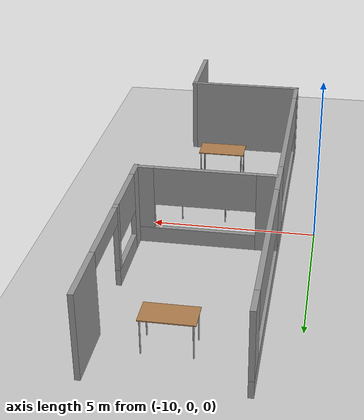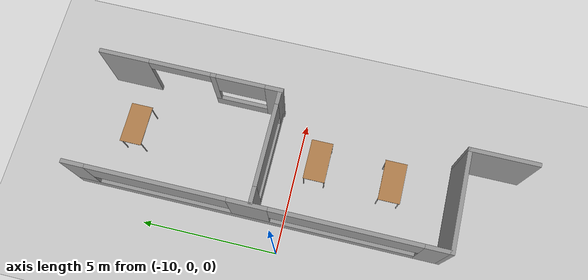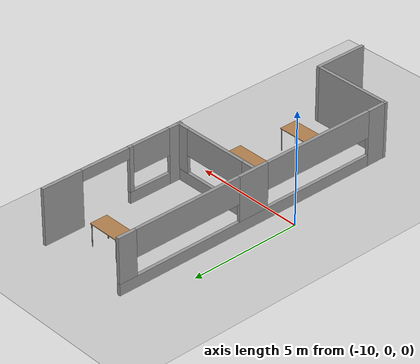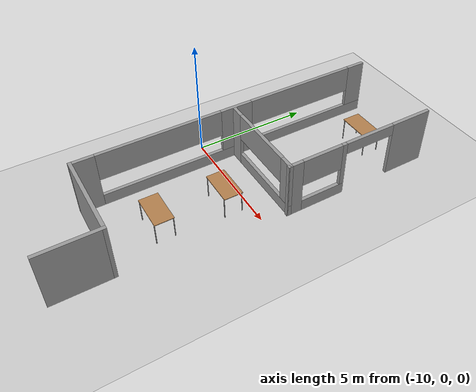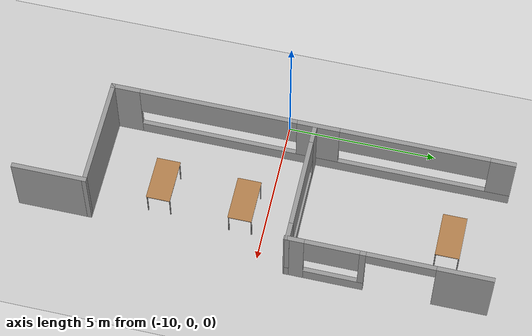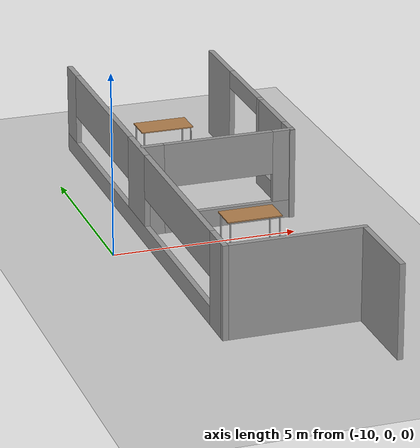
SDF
<sdf version="1.6">
 <world name="default">
  <model name="ground_plane">
   <static>1</static>
   <link name="link">
    <collision name="collision">
     <geometry><plane><normal>0 0 1</normal><size>100 100</size></plane></geometry>
     <surface>
      <contact><collide_bitmask>65535</collide_bitmask></contact>
      <friction><ode><mu>100</mu><mu2>50</mu2></ode></friction>
     </surface>
    </collision>
    <visual name="visual">
     <cast_shadows>0</cast_shadows>
     <geometry><plane><normal>0 0 1</normal><size>100 100</size></plane></geometry>
     <material>
      <script><uri>file://media/materials/scripts/gazebo.material</uri><name>Gazebo/Grey</name></script>
     </material>
    </visual>
   </link>
  </model>
  <model name="my_office">
   <link name="Wall_46">
    <pose>-5.01478 4.56257 0 0 -0 1.5708</pose>
    <visual name="Wall_46_Visual_0">
     <pose>-3.04368 0 1.25 0 -0 0</pose>
     <geometry><box><size>0.662647 0.15 2.5</size></box></geometry>
     <material>
      <script><uri>file://media/materials/scripts/gazebo.material</uri><name>Gazebo/Grey</name></script>
      <ambient>1 1 1 1</ambient>
      <shader type="pixel"/>
      <diffuse>0.7 0.7 0.7 1</diffuse>
      <specular>0.01 0.01 0.01 1</specular>
      <emissive>0 0 0 1</emissive>
     </material>
     <meta><layer>0</layer></meta>
    </visual>
    <visual name="Wall_46_Visual_1">
     <pose>2.45072 0 1.25 0 -0 0</pose>
     <geometry><box><size>1.84856 0.15 2.5</size></box></geometry>
     <material>
      <script><uri>file://media/materials/scripts/gazebo.material</uri><name>Gazebo/Grey</name></script>
      <ambient>1 1 1 1</ambient>
      <shader type="pixel"/>
      <diffuse>0.7 0.7 0.7 1</diffuse>
      <specular>0.01 0.01 0.01 1</specular>
      <emissive>0 0 0 1</emissive>
     </material>
     <meta><layer>0</layer></meta>
    </visual>
    <visual name="Wall_46_Visual_2">
     <pose>-1.71975 0 0.25 0 -0 0</pose>
     <geometry><box><size>1.98521 0.15 0.5</size></box></geometry>
     <material>
      <script><uri>file://media/materials/scripts/gazebo.material</uri><name>Gazebo/Grey</name></script>
      <ambient>1 1 1 1</ambient>
      <shader type="pixel"/>
      <diffuse>0.7 0.7 0.7 1</diffuse>
      <specular>0.01 0.01 0.01 1</specular>
      <emissive>0 0 0 1</emissive>
     </material>
     <meta><layer>0</layer></meta>
    </visual>
    <visual name="Wall_46_Visual_3">
     <pose>-0.827243 0 1.5 0 -0 0</pose>
     <geometry><box><size>0.200209 0.15 2</size></box></geometry>
     <material>
      <script><uri>file://media/materials/scripts/gazebo.material</uri><name>Gazebo/Grey</name></script>
      <ambient>1 1 1 1</ambient>
      <shader type="pixel"/>
      <diffuse>0.7 0.7 0.7 1</diffuse>
      <specular>0.01 0.01 0.01 1</specular>
      <emissive>0 0 0 1</emissive>
     </material>
     <meta><layer>0</layer></meta>
    </visual>
    <visual name="Wall_46_Visual_4">
     <pose>-1.81985 0 1.9 0 -0 0</pose>
     <geometry><box><size>1.785 0.15 1.2</size></box></geometry>
     <material>
      <script><uri>file://media/materials/scripts/gazebo.material</uri><name>Gazebo/Grey</name></script>
      <ambient>1 1 1 1</ambient>
      <shader type="pixel"/>
      <diffuse>0.7 0.7 0.7 1</diffuse>
      <specular>0.01 0.01 0.01 1</specular>
      <emissive>0 0 0 1</emissive>
     </material>
     <meta><layer>0</layer></meta>
    </visual>
    <visual name="Wall_46_Visual_5">
     <pose>0.399651 0 2.25 0 -0 0</pose>
     <geometry><box><size>2.25358 0.15 0.5</size></box></geometry>
     <material>
      <script><uri>file://media/materials/scripts/gazebo.material</uri><name>Gazebo/Grey</name></script>
      <ambient>1 1 1 1</ambient>
      <shader type="pixel"/>
      <diffuse>0.7 0.7 0.7 1</diffuse>
      <specular>0.01 0.01 0.01 1</specular>
      <emissive>0 0 0 1</emissive>
     </material>
     <meta><layer>0</layer></meta>
    </visual>
    <collision name="Wall_46_Collision_2">
     <pose>-1.71975 0 0.25 0 -0 0</pose>
     <geometry><box><size>1.98521 0.15 0.5</size></box></geometry>
     <surface>
      <friction>
       <ode><mu>1</mu><mu2>1</mu2><fdir1>0 0 0</fdir1><slip1>0</slip1><slip2>0</slip2></ode>
       <torsional>
        <coefficient>1</coefficient>
        <patch_radius>0</patch_radius>
        <surface_radius>0</surface_radius>
        <use_patch_radius>1</use_patch_radius>
        <ode><slip>0</slip></ode>
       </torsional>
      </friction>
      <bounce><restitution_coefficient>0</restitution_coefficient><threshold>1e+06</threshold></bounce>
      <contact>
       <collide_without_contact>0</collide_without_contact>
       <collide_without_contact_bitmask>1</collide_without_contact_bitmask>
       <collide_bitmask>1</collide_bitmask>
       <ode>
        <soft_cfm>0</soft_cfm>
        <soft_erp>0.2</soft_erp>
        <kp>1e+13</kp>
        <kd>1</kd>
        <max_vel>0.01</max_vel>
        <min_depth>0</min_depth>
       </ode>
       <bullet>
        <split_impulse>1</split_impulse>
        <split_impulse_penetration_threshold>-0.01</split_impulse_penetration_threshold>
        <soft_cfm>0</soft_cfm>
        <soft_erp>0.2</soft_erp>
        <kp>1e+13</kp>
        <kd>1</kd>
       </bullet>
      </contact>
     </surface>
    </collision>
    <collision name="Wall_46_Collision_3">
     <pose>-0.827243 0 1.5 0 -0 0</pose>
     <geometry><box><size>0.200209 0.15 2</size></box></geometry>
     <surface>
      <friction>
       <ode><mu>1</mu><mu2>1</mu2><fdir1>0 0 0</fdir1><slip1>0</slip1><slip2>0</slip2></ode>
       <torsional>
        <coefficient>1</coefficient>
        <patch_radius>0</patch_radius>
        <surface_radius>0</surface_radius>
        <use_patch_radius>1</use_patch_radius>
        <ode><slip>0</slip></ode>
       </torsional>
      </friction>
      <bounce><restitution_coefficient>0</restitution_coefficient><threshold>1e+06</threshold></bounce>
      <contact>
       <collide_without_contact>0</collide_without_contact>
       <collide_without_contact_bitmask>1</collide_without_contact_bitmask>
       <collide_bitmask>1</collide_bitmask>
       <ode>
        <soft_cfm>0</soft_cfm>
        <soft_erp>0.2</soft_erp>
        <kp>1e+13</kp>
        <kd>1</kd>
        <max_vel>0.01</max_vel>
        <min_depth>0</min_depth>
       </ode>
       <bullet>
        <split_impulse>1</split_impulse>
        <split_impulse_penetration_threshold>-0.01</split_impulse_penetration_threshold>
        <soft_cfm>0</soft_cfm>
        <soft_erp>0.2</soft_erp>
        <kp>1e+13</kp>
        <kd>1</kd>
       </bullet>
      </contact>
     </surface>
    </collision>
    <collision name="Wall_46_Collision_4">
     <pose>-1.81985 0 1.9 0 -0 0</pose>
     <geometry><box><size>1.785 0.15 1.2</size></box></geometry>
     <surface>
      <friction>
       <ode><mu>1</mu><mu2>1</mu2><fdir1>0 0 0</fdir1><slip1>0</slip1><slip2>0</slip2></ode>
       <torsional>
        <coefficient>1</coefficient>
        <patch_radius>0</patch_radius>
        <surface_radius>0</surface_radius>
        <use_patch_radius>1</use_patch_radius>
        <ode><slip>0</slip></ode>
       </torsional>
      </friction>
      <bounce><restitution_coefficient>0</restitution_coefficient><threshold>1e+06</threshold></bounce>
      <contact>
       <collide_without_contact>0</collide_without_contact>
       <collide_without_contact_bitmask>1</collide_without_contact_bitmask>
       <collide_bitmask>1</collide_bitmask>
       <ode>
        <soft_cfm>0</soft_cfm>
        <soft_erp>0.2</soft_erp>
        <kp>1e+13</kp>
        <kd>1</kd>
        <max_vel>0.01</max_vel>
        <min_depth>0</min_depth>
       </ode>
       <bullet>
        <split_impulse>1</split_impulse>
        <split_impulse_penetration_threshold>-0.01</split_impulse_penetration_threshold>
        <soft_cfm>0</soft_cfm>
        <soft_erp>0.2</soft_erp>
        <kp>1e+13</kp>
        <kd>1</kd>
       </bullet>
      </contact>
     </surface>
    </collision>
    <collision name="Wall_46_Collision_5">
     <pose>0.399651 0 2.25 0 -0 0</pose>
     <geometry><box><size>2.25358 0.15 0.5</size></box></geometry>
     <surface>
      <friction>
       <ode><mu>1</mu><mu2>1</mu2><fdir1>0 0 0</fdir1><slip1>0</slip1><slip2>0</slip2></ode>
       <torsional>
        <coefficient>1</coefficient>
        <patch_radius>0</patch_radius>
        <surface_radius>0</surface_radius>
        <use_patch_radius>1</use_patch_radius>
        <ode><slip>0</slip></ode>
       </torsional>
      </friction>
      <bounce><restitution_coefficient>0</restitution_coefficient><threshold>1e+06</threshold></bounce>
      <contact>
       <collide_without_contact>0</collide_without_contact>
       <collide_without_contact_bitmask>1</collide_without_contact_bitmask>
       <collide_bitmask>1</collide_bitmask>
       <ode>
        <soft_cfm>0</soft_cfm>
        <soft_erp>0.2</soft_erp>
        <kp>1e+13</kp>
        <kd>1</kd>
        <max_vel>0.01</max_vel>
        <min_depth>0</min_depth>
       </ode>
       <bullet>
        <split_impulse>1</split_impulse>
        <split_impulse_penetration_threshold>-0.01</split_impulse_penetration_threshold>
        <soft_cfm>0</soft_cfm>
        <soft_erp>0.2</soft_erp>
        <kp>1e+13</kp>
        <kd>1</kd>
       </bullet>
      </contact>
     </surface>
    </collision>
    <collision name="Wall_46_Collision_0">
     <pose>-3.04368 0 1.25 0 -0 0</pose>
     <geometry><box><size>0.662647 0.15 2.5</size></box></geometry>
     <surface>
      <friction>
       <ode><mu>1</mu><mu2>1</mu2><fdir1>0 0 0</fdir1><slip1>0</slip1><slip2>0</slip2></ode>
       <torsional>
        <coefficient>1</coefficient>
        <patch_radius>0</patch_radius>
        <surface_radius>0</surface_radius>
        <use_patch_radius>1</use_patch_radius>
        <ode><slip>0</slip></ode>
       </torsional>
      </friction>
      <bounce><restitution_coefficient>0</restitution_coefficient><threshold>1e+06</threshold></bounce>
      <contact>
       <collide_without_contact>0</collide_without_contact>
       <collide_without_contact_bitmask>1</collide_without_contact_bitmask>
       <collide_bitmask>1</collide_bitmask>
       <ode>
        <soft_cfm>0</soft_cfm>
        <soft_erp>0.2</soft_erp>
        <kp>1e+13</kp>
        <kd>1</kd>
        <max_vel>0.01</max_vel>
        <min_depth>0</min_depth>
       </ode>
       <bullet>
        <split_impulse>1</split_impulse>
        <split_impulse_penetration_threshold>-0.01</split_impulse_penetration_threshold>
        <soft_cfm>0</soft_cfm>
        <soft_erp>0.2</soft_erp>
        <kp>1e+13</kp>
        <kd>1</kd>
       </bullet>
      </contact>
     </surface>
    </collision>
    <collision name="Wall_46_Collision_1">
     <pose>2.45072 0 1.25 0 -0 0</pose>
     <geometry><box><size>1.84856 0.15 2.5</size></box></geometry>
     <surface>
      <friction>
       <ode><mu>1</mu><mu2>1</mu2><fdir1>0 0 0</fdir1><slip1>0</slip1><slip2>0</slip2></ode>
       <torsional>
        <coefficient>1</coefficient>
        <patch_radius>0</patch_radius>
        <surface_radius>0</surface_radius>
        <use_patch_radius>1</use_patch_radius>
        <ode><slip>0</slip></ode>
       </torsional>
      </friction>
      <bounce><restitution_coefficient>0</restitution_coefficient><threshold>1e+06</threshold></bounce>
      <contact>
       <collide_without_contact>0</collide_without_contact>
       <collide_without_contact_bitmask>1</collide_without_contact_bitmask>
       <collide_bitmask>1</collide_bitmask>
       <ode>
        <soft_cfm>0</soft_cfm>
        <soft_erp>0.2</soft_erp>
        <kp>1e+13</kp>
        <kd>1</kd>
        <max_vel>0.01</max_vel>
        <min_depth>0</min_depth>
       </ode>
       <bullet>
        <split_impulse>1</split_impulse>
        <split_impulse_penetration_threshold>-0.01</split_impulse_penetration_threshold>
        <soft_cfm>0</soft_cfm>
        <soft_erp>0.2</soft_erp>
        <kp>1e+13</kp>
        <kd>1</kd>
       </bullet>
      </contact>
     </surface>
    </collision>
   </link>
   <link name="Wall_48">
    <pose>-7.41345 -5.50336 0 0 -0 3.14159</pose>
    <visual name="Wall_48_Visual">
     <pose>0 0 1.25 0 -0 0</pose>
     <geometry><box><size>3.75 0.15 2.5</size></box></geometry>
     <material>
      <script><uri>file://media/materials/scripts/gazebo.material</uri><name>Gazebo/Grey</name></script>
      <ambient>1 1 1 1</ambient>
      <shader type="pixel"/>
      <diffuse>0.7 0.7 0.7 1</diffuse>
      <specular>0.01 0.01 0.01 1</specular>
      <emissive>0 0 0 1</emissive>
     </material>
     <meta><layer>0</layer></meta>
    </visual>
    <collision name="Wall_48_Collision">
     <pose>0 0 1.25 0 -0 0</pose>
     <geometry><box><size>3.75 0.15 2.5</size></box></geometry>
     <surface>
      <friction>
       <ode><mu>1</mu><mu2>1</mu2><fdir1>0 0 0</fdir1><slip1>0</slip1><slip2>0</slip2></ode>
       <torsional>
        <coefficient>1</coefficient>
        <patch_radius>0</patch_radius>
        <surface_radius>0</surface_radius>
        <use_patch_radius>1</use_patch_radius>
        <ode><slip>0</slip></ode>
       </torsional>
      </friction>
      <bounce><restitution_coefficient>0</restitution_coefficient><threshold>1e+06</threshold></bounce>
      <contact>
       <collide_without_contact>0</collide_without_contact>
       <collide_without_contact_bitmask>1</collide_without_contact_bitmask>
       <collide_bitmask>1</collide_bitmask>
       <ode>
        <soft_cfm>0</soft_cfm>
        <soft_erp>0.2</soft_erp>
        <kp>1e+13</kp>
        <kd>1</kd>
        <max_vel>0.01</max_vel>
        <min_depth>0</min_depth>
       </ode>
       <bullet>
        <split_impulse>1</split_impulse>
        <split_impulse_penetration_threshold>-0.01</split_impulse_penetration_threshold>
        <soft_cfm>0</soft_cfm>
        <soft_erp>0.2</soft_erp>
        <kp>1e+13</kp>
        <kd>1</kd>
       </bullet>
      </contact>
     </surface>
    </collision>
   </link>
   <link name="Wall_5">
    <pose>-5.61345 -6.67836 0 0 -0 1.5708</pose>
    <visual name="Wall_5_Visual">
     <pose>0 0 1.25 0 -0 0</pose>
     <geometry><box><size>2.5 0.15 2.5</size></box></geometry>
     <material>
      <script><uri>file://media/materials/scripts/gazebo.material</uri><name>Gazebo/Grey</name></script>
      <ambient>1 1 1 1</ambient>
      <shader type="pixel"/>
      <diffuse>0.7 0.7 0.7 1</diffuse>
      <specular>0.01 0.01 0.01 1</specular>
      <emissive>0 0 0 1</emissive>
     </material>
     <meta><layer>0</layer></meta>
    </visual>
    <collision name="Wall_5_Collision">
     <pose>0 0 1.25 0 -0 0</pose>
     <geometry><box><size>2.5 0.15 2.5</size></box></geometry>
     <surface>
      <friction>
       <ode><mu>1</mu><mu2>1</mu2><fdir1>0 0 0</fdir1><slip1>0</slip1><slip2>0</slip2></ode>
       <torsional>
        <coefficient>1</coefficient>
        <patch_radius>0</patch_radius>
        <surface_radius>0</surface_radius>
        <use_patch_radius>1</use_patch_radius>
        <ode><slip>0</slip></ode>
       </torsional>
      </friction>
      <bounce><restitution_coefficient>0</restitution_coefficient><threshold>1e+06</threshold></bounce>
      <contact>
       <collide_without_contact>0</collide_without_contact>
       <collide_without_contact_bitmask>1</collide_without_contact_bitmask>
       <collide_bitmask>1</collide_bitmask>
       <ode>
        <soft_cfm>0</soft_cfm>
        <soft_erp>0.2</soft_erp>
        <kp>1e+13</kp>
        <kd>1</kd>
        <max_vel>0.01</max_vel>
        <min_depth>0</min_depth>
       </ode>
       <bullet>
        <split_impulse>1</split_impulse>
        <split_impulse_penetration_threshold>-0.01</split_impulse_penetration_threshold>
        <soft_cfm>0</soft_cfm>
        <soft_erp>0.2</soft_erp>
        <kp>1e+13</kp>
        <kd>1</kd>
       </bullet>
      </contact>
     </surface>
    </collision>
   </link>
   <link name="Wall_51">
    <pose>-9.21345 1.17164 0 0 -0 1.5708</pose>
    <visual name="Wall_51_Visual_0">
     <pose>-6.25352 0 1.25 0 -0 0</pose>
     <geometry><box><size>0.992958 0.15 2.5</size></box></geometry>
     <material>
      <script><uri>file://media/materials/scripts/gazebo.material</uri><name>Gazebo/Grey</name></script>
      <ambient>1 1 1 1</ambient>
      <shader type="pixel"/>
      <diffuse>0.7 0.7 0.7 1</diffuse>
      <specular>0.01 0.01 0.01 1</specular>
      <emissive>0 0 0 1</emissive>
     </material>
     <meta><layer>0</layer></meta>
    </visual>
    <visual name="Wall_51_Visual_1">
     <pose>0.496479 0 0.25 0 -0 0</pose>
     <geometry><box><size>12.507 0.15 0.5</size></box></geometry>
     <material>
      <script><uri>file://media/materials/scripts/gazebo.material</uri><name>Gazebo/Grey</name></script>
      <ambient>1 1 1 1</ambient>
      <shader type="pixel"/>
      <diffuse>0.7 0.7 0.7 1</diffuse>
      <specular>0.01 0.01 0.01 1</specular>
      <emissive>0 0 0 1</emissive>
     </material>
     <meta><layer>0</layer></meta>
    </visual>
    <visual name="Wall_51_Visual_3">
     <pose>6.332 0 1.5 0 -0 0</pose>
     <geometry><box><size>0.836008 0.15 2</size></box></geometry>
     <material>
      <script><uri>file://media/materials/scripts/gazebo.material</uri><name>Gazebo/Grey</name></script>
      <ambient>1 1 1 1</ambient>
      <shader type="pixel"/>
      <diffuse>0.7 0.7 0.7 1</diffuse>
      <specular>0.01 0.01 0.01 1</specular>
      <emissive>0 0 0 1</emissive>
     </material>
     <meta><layer>0</layer></meta>
    </visual>
    <visual name="Wall_51_Visual_2">
     <pose>0.239384 0 1.5 0 -0 0</pose>
     <geometry><box><size>1.4222 0.15 2</size></box></geometry>
     <material>
      <script><uri>file://media/materials/scripts/gazebo.material</uri><name>Gazebo/Grey</name></script>
      <ambient>1 1 1 1</ambient>
      <shader type="pixel"/>
      <diffuse>0.7 0.7 0.7 1</diffuse>
      <specular>0.01 0.01 0.01 1</specular>
      <emissive>0 0 0 1</emissive>
     </material>
     <meta><layer>0</layer></meta>
    </visual>
    <visual name="Wall_51_Visual_4">
     <pose>-3.11438 0 1.9 0 -0 0</pose>
     <geometry><box><size>5.28533 0.15 1.2</size></box></geometry>
     <material>
      <script><uri>file://media/materials/scripts/gazebo.material</uri><name>Gazebo/Grey</name></script>
      <ambient>1 1 1 1</ambient>
      <shader type="pixel"/>
      <diffuse>0.7 0.7 0.7 1</diffuse>
      <specular>0.01 0.01 0.01 1</specular>
      <emissive>0 0 0 1</emissive>
     </material>
     <meta><layer>0</layer></meta>
    </visual>
    <visual name="Wall_51_Visual_5">
     <pose>3.43224 0 1.9 0 -0 0</pose>
     <geometry><box><size>4.96351 0.15 1.2</size></box></geometry>
     <material>
      <script><uri>file://media/materials/scripts/gazebo.material</uri><name>Gazebo/Grey</name></script>
      <ambient>1 1 1 1</ambient>
      <shader type="pixel"/>
      <diffuse>0.7 0.7 0.7 1</diffuse>
      <specular>0.01 0.01 0.01 1</specular>
      <emissive>0 0 0 1</emissive>
     </material>
     <meta><layer>0</layer></meta>
    </visual>
    <collision name="Wall_51_Collision_0">
     <pose>-6.25352 0 1.25 0 -0 0</pose>
     <geometry><box><size>0.992958 0.15 2.5</size></box></geometry>
     <surface>
      <friction>
       <ode><mu>1</mu><mu2>1</mu2><fdir1>0 0 0</fdir1><slip1>0</slip1><slip2>0</slip2></ode>
       <torsional>
        <coefficient>1</coefficient>
        <patch_radius>0</patch_radius>
        <surface_radius>0</surface_radius>
        <use_patch_radius>1</use_patch_radius>
        <ode><slip>0</slip></ode>
       </torsional>
      </friction>
      <bounce><restitution_coefficient>0</restitution_coefficient><threshold>1e+06</threshold></bounce>
      <contact>
       <collide_without_contact>0</collide_without_contact>
       <collide_without_contact_bitmask>1</collide_without_contact_bitmask>
       <collide_bitmask>1</collide_bitmask>
       <ode>
        <soft_cfm>0</soft_cfm>
        <soft_erp>0.2</soft_erp>
        <kp>1e+13</kp>
        <kd>1</kd>
        <max_vel>0.01</max_vel>
        <min_depth>0</min_depth>
       </ode>
       <bullet>
        <split_impulse>1</split_impulse>
        <split_impulse_penetration_threshold>-0.01</split_impulse_penetration_threshold>
        <soft_cfm>0</soft_cfm>
        <soft_erp>0.2</soft_erp>
        <kp>1e+13</kp>
        <kd>1</kd>
       </bullet>
      </contact>
     </surface>
    </collision>
    <collision name="Wall_51_Collision_1">
     <pose>0.496479 0 0.25 0 -0 0</pose>
     <geometry><box><size>12.507 0.15 0.5</size></box></geometry>
     <surface>
      <friction>
       <ode><mu>1</mu><mu2>1</mu2><fdir1>0 0 0</fdir1><slip1>0</slip1><slip2>0</slip2></ode>
       <torsional>
        <coefficient>1</coefficient>
        <patch_radius>0</patch_radius>
        <surface_radius>0</surface_radius>
        <use_patch_radius>1</use_patch_radius>
        <ode><slip>0</slip></ode>
       </torsional>
      </friction>
      <bounce><restitution_coefficient>0</restitution_coefficient><threshold>1e+06</threshold></bounce>
      <contact>
       <collide_without_contact>0</collide_without_contact>
       <collide_without_contact_bitmask>1</collide_without_contact_bitmask>
       <collide_bitmask>1</collide_bitmask>
       <ode>
        <soft_cfm>0</soft_cfm>
        <soft_erp>0.2</soft_erp>
        <kp>1e+13</kp>
        <kd>1</kd>
        <max_vel>0.01</max_vel>
        <min_depth>0</min_depth>
       </ode>
       <bullet>
        <split_impulse>1</split_impulse>
        <split_impulse_penetration_threshold>-0.01</split_impulse_penetration_threshold>
        <soft_cfm>0</soft_cfm>
        <soft_erp>0.2</soft_erp>
        <kp>1e+13</kp>
        <kd>1</kd>
       </bullet>
      </contact>
     </surface>
    </collision>
    <collision name="Wall_51_Collision_2">
     <pose>0.239384 0 1.5 0 -0 0</pose>
     <geometry><box><size>1.4222 0.15 2</size></box></geometry>
     <surface>
      <friction>
       <ode><mu>1</mu><mu2>1</mu2><fdir1>0 0 0</fdir1><slip1>0</slip1><slip2>0</slip2></ode>
       <torsional>
        <coefficient>1</coefficient>
        <patch_radius>0</patch_radius>
        <surface_radius>0</surface_radius>
        <use_patch_radius>1</use_patch_radius>
        <ode><slip>0</slip></ode>
       </torsional>
      </friction>
      <bounce><restitution_coefficient>0</restitution_coefficient><threshold>1e+06</threshold></bounce>
      <contact>
       <collide_without_contact>0</collide_without_contact>
       <collide_without_contact_bitmask>1</collide_without_contact_bitmask>
       <collide_bitmask>1</collide_bitmask>
       <ode>
        <soft_cfm>0</soft_cfm>
        <soft_erp>0.2</soft_erp>
        <kp>1e+13</kp>
        <kd>1</kd>
        <max_vel>0.01</max_vel>
        <min_depth>0</min_depth>
       </ode>
       <bullet>
        <split_impulse>1</split_impulse>
        <split_impulse_penetration_threshold>-0.01</split_impulse_penetration_threshold>
        <soft_cfm>0</soft_cfm>
        <soft_erp>0.2</soft_erp>
        <kp>1e+13</kp>
        <kd>1</kd>
       </bullet>
      </contact>
     </surface>
    </collision>
    <collision name="Wall_51_Collision_3">
     <pose>6.332 0 1.5 0 -0 0</pose>
     <geometry><box><size>0.836008 0.15 2</size></box></geometry>
     <surface>
      <friction>
       <ode><mu>1</mu><mu2>1</mu2><fdir1>0 0 0</fdir1><slip1>0</slip1><slip2>0</slip2></ode>
       <torsional>
        <coefficient>1</coefficient>
        <patch_radius>0</patch_radius>
        <surface_radius>0</surface_radius>
        <use_patch_radius>1</use_patch_radius>
        <ode><slip>0</slip></ode>
       </torsional>
      </friction>
      <bounce><restitution_coefficient>0</restitution_coefficient><threshold>1e+06</threshold></bounce>
      <contact>
       <collide_without_contact>0</collide_without_contact>
       <collide_without_contact_bitmask>1</collide_without_contact_bitmask>
       <collide_bitmask>1</collide_bitmask>
       <ode>
        <soft_cfm>0</soft_cfm>
        <soft_erp>0.2</soft_erp>
        <kp>1e+13</kp>
        <kd>1</kd>
        <max_vel>0.01</max_vel>
        <min_depth>0</min_depth>
       </ode>
       <bullet>
        <split_impulse>1</split_impulse>
        <split_impulse_penetration_threshold>-0.01</split_impulse_penetration_threshold>
        <soft_cfm>0</soft_cfm>
        <soft_erp>0.2</soft_erp>
        <kp>1e+13</kp>
        <kd>1</kd>
       </bullet>
      </contact>
     </surface>
    </collision>
    <collision name="Wall_51_Collision_4">
     <pose>-3.11438 0 1.9 0 -0 0</pose>
     <geometry><box><size>5.28533 0.15 1.2</size></box></geometry>
     <surface>
      <friction>
       <ode><mu>1</mu><mu2>1</mu2><fdir1>0 0 0</fdir1><slip1>0</slip1><slip2>0</slip2></ode>
       <torsional>
        <coefficient>1</coefficient>
        <patch_radius>0</patch_radius>
        <surface_radius>0</surface_radius>
        <use_patch_radius>1</use_patch_radius>
        <ode><slip>0</slip></ode>
       </torsional>
      </friction>
      <bounce><restitution_coefficient>0</restitution_coefficient><threshold>1e+06</threshold></bounce>
      <contact>
       <collide_without_contact>0</collide_without_contact>
       <collide_without_contact_bitmask>1</collide_without_contact_bitmask>
       <collide_bitmask>1</collide_bitmask>
       <ode>
        <soft_cfm>0</soft_cfm>
        <soft_erp>0.2</soft_erp>
        <kp>1e+13</kp>
        <kd>1</kd>
        <max_vel>0.01</max_vel>
        <min_depth>0</min_depth>
       </ode>
       <bullet>
        <split_impulse>1</split_impulse>
        <split_impulse_penetration_threshold>-0.01</split_impulse_penetration_threshold>
        <soft_cfm>0</soft_cfm>
        <soft_erp>0.2</soft_erp>
        <kp>1e+13</kp>
        <kd>1</kd>
       </bullet>
      </contact>
     </surface>
    </collision>
    <collision name="Wall_51_Collision_5">
     <pose>3.43224 0 1.9 0 -0 0</pose>
     <geometry><box><size>4.96351 0.15 1.2</size></box></geometry>
     <surface>
      <friction>
       <ode><mu>1</mu><mu2>1</mu2><fdir1>0 0 0</fdir1><slip1>0</slip1><slip2>0</slip2></ode>
       <torsional>
        <coefficient>1</coefficient>
        <patch_radius>0</patch_radius>
        <surface_radius>0</surface_radius>
        <use_patch_radius>1</use_patch_radius>
        <ode><slip>0</slip></ode>
       </torsional>
      </friction>
      <bounce><restitution_coefficient>0</restitution_coefficient><threshold>1e+06</threshold></bounce>
      <contact>
       <collide_without_contact>0</collide_without_contact>
       <collide_without_contact_bitmask>1</collide_without_contact_bitmask>
       <collide_bitmask>1</collide_bitmask>
       <ode>
        <soft_cfm>0</soft_cfm>
        <soft_erp>0.2</soft_erp>
        <kp>1e+13</kp>
        <kd>1</kd>
        <max_vel>0.01</max_vel>
        <min_depth>0</min_depth>
       </ode>
       <bullet>
        <split_impulse>1</split_impulse>
        <split_impulse_penetration_threshold>-0.01</split_impulse_penetration_threshold>
        <soft_cfm>0</soft_cfm>
        <soft_erp>0.2</soft_erp>
        <kp>1e+13</kp>
        <kd>1</kd>
       </bullet>
      </contact>
     </surface>
    </collision>
   </link>
   <link name="Wall_54">
    <pose>-7.06206 1.30246 0 0 -0 0</pose>
    <visual name="Wall_54_Visual_0">
     <pose>-1.8157 0 1.25 0 -0 0</pose>
     <geometry><box><size>0.618609 0.15 2.5</size></box></geometry>
     <material>
      <script><uri>file://media/materials/scripts/gazebo.material</uri><name>Gazebo/Grey</name></script>
      <ambient>1 1 1 1</ambient>
      <shader type="pixel"/>
      <diffuse>0.7 0.7 0.7 1</diffuse>
      <specular>0.01 0.01 0.01 1</specular>
      <emissive>0 0 0 1</emissive>
     </material>
     <meta><layer>0</layer></meta>
    </visual>
    <visual name="Wall_54_Visual_1">
     <pose>0.309305 0 0.25 0 -0 0</pose>
     <geometry><box><size>3.63139 0.15 0.5</size></box></geometry>
     <material>
      <script><uri>file://media/materials/scripts/gazebo.material</uri><name>Gazebo/Grey</name></script>
      <ambient>1 1 1 1</ambient>
      <shader type="pixel"/>
      <diffuse>0.7 0.7 0.7 1</diffuse>
      <specular>0.01 0.01 0.01 1</specular>
      <emissive>0 0 0 1</emissive>
     </material>
     <meta><layer>0</layer></meta>
    </visual>
    <visual name="Wall_54_Visual_2">
     <pose>1.81744 0 1.5 0 -0 0</pose>
     <geometry><box><size>0.615129 0.15 2</size></box></geometry>
     <material>
      <script><uri>file://media/materials/scripts/gazebo.material</uri><name>Gazebo/Grey</name></script>
      <ambient>1 1 1 1</ambient>
      <shader type="pixel"/>
      <diffuse>0.7 0.7 0.7 1</diffuse>
      <specular>0.01 0.01 0.01 1</specular>
      <emissive>0 0 0 1</emissive>
     </material>
     <meta><layer>0</layer></meta>
    </visual>
    <visual name="Wall_54_Visual_3">
     <pose>0.00174 0 1.9 0 -0 0</pose>
     <geometry><box><size>3.01626 0.15 1.2</size></box></geometry>
     <material>
      <script><uri>file://media/materials/scripts/gazebo.material</uri><name>Gazebo/Grey</name></script>
      <ambient>1 1 1 1</ambient>
      <shader type="pixel"/>
      <diffuse>0.7 0.7 0.7 1</diffuse>
      <specular>0.01 0.01 0.01 1</specular>
      <emissive>0 0 0 1</emissive>
     </material>
     <meta><layer>0</layer></meta>
    </visual>
    <collision name="Wall_54_Collision_0">
     <pose>-1.8157 0 1.25 0 -0 0</pose>
     <geometry><box><size>0.618609 0.15 2.5</size></box></geometry>
     <surface>
      <friction>
       <ode><mu>1</mu><mu2>1</mu2><fdir1>0 0 0</fdir1><slip1>0</slip1><slip2>0</slip2></ode>
       <torsional>
        <coefficient>1</coefficient>
        <patch_radius>0</patch_radius>
        <surface_radius>0</surface_radius>
        <use_patch_radius>1</use_patch_radius>
        <ode><slip>0</slip></ode>
       </torsional>
      </friction>
      <bounce><restitution_coefficient>0</restitution_coefficient><threshold>1e+06</threshold></bounce>
      <contact>
       <collide_without_contact>0</collide_without_contact>
       <collide_without_contact_bitmask>1</collide_without_contact_bitmask>
       <collide_bitmask>1</collide_bitmask>
       <ode>
        <soft_cfm>0</soft_cfm>
        <soft_erp>0.2</soft_erp>
        <kp>1e+13</kp>
        <kd>1</kd>
        <max_vel>0.01</max_vel>
        <min_depth>0</min_depth>
       </ode>
       <bullet>
        <split_impulse>1</split_impulse>
        <split_impulse_penetration_threshold>-0.01</split_impulse_penetration_threshold>
        <soft_cfm>0</soft_cfm>
        <soft_erp>0.2</soft_erp>
        <kp>1e+13</kp>
        <kd>1</kd>
       </bullet>
      </contact>
     </surface>
    </collision>
    <collision name="Wall_54_Collision_2">
     <pose>1.81744 0 1.5 0 -0 0</pose>
     <geometry><box><size>0.615129 0.15 2</size></box></geometry>
     <surface>
      <friction>
       <ode><mu>1</mu><mu2>1</mu2><fdir1>0 0 0</fdir1><slip1>0</slip1><slip2>0</slip2></ode>
       <torsional>
        <coefficient>1</coefficient>
        <patch_radius>0</patch_radius>
        <surface_radius>0</surface_radius>
        <use_patch_radius>1</use_patch_radius>
        <ode><slip>0</slip></ode>
       </torsional>
      </friction>
      <bounce><restitution_coefficient>0</restitution_coefficient><threshold>1e+06</threshold></bounce>
      <contact>
       <collide_without_contact>0</collide_without_contact>
       <collide_without_contact_bitmask>1</collide_without_contact_bitmask>
       <collide_bitmask>1</collide_bitmask>
       <ode>
        <soft_cfm>0</soft_cfm>
        <soft_erp>0.2</soft_erp>
        <kp>1e+13</kp>
        <kd>1</kd>
        <max_vel>0.01</max_vel>
        <min_depth>0</min_depth>
       </ode>
       <bullet>
        <split_impulse>1</split_impulse>
        <split_impulse_penetration_threshold>-0.01</split_impulse_penetration_threshold>
        <soft_cfm>0</soft_cfm>
        <soft_erp>0.2</soft_erp>
        <kp>1e+13</kp>
        <kd>1</kd>
       </bullet>
      </contact>
     </surface>
    </collision>
    <collision name="Wall_54_Collision_1">
     <pose>0.309305 0 0.25 0 -0 0</pose>
     <geometry><box><size>3.63139 0.15 0.5</size></box></geometry>
     <surface>
      <friction>
       <ode><mu>1</mu><mu2>1</mu2><fdir1>0 0 0</fdir1><slip1>0</slip1><slip2>0</slip2></ode>
       <torsional>
        <coefficient>1</coefficient>
        <patch_radius>0</patch_radius>
        <surface_radius>0</surface_radius>
        <use_patch_radius>1</use_patch_radius>
        <ode><slip>0</slip></ode>
       </torsional>
      </friction>
      <bounce><restitution_coefficient>0</restitution_coefficient><threshold>1e+06</threshold></bounce>
      <contact>
       <collide_without_contact>0</collide_without_contact>
       <collide_without_contact_bitmask>1</collide_without_contact_bitmask>
       <collide_bitmask>1</collide_bitmask>
       <ode>
        <soft_cfm>0</soft_cfm>
        <soft_erp>0.2</soft_erp>
        <kp>1e+13</kp>
        <kd>1</kd>
        <max_vel>0.01</max_vel>
        <min_depth>0</min_depth>
       </ode>
       <bullet>
        <split_impulse>1</split_impulse>
        <split_impulse_penetration_threshold>-0.01</split_impulse_penetration_threshold>
        <soft_cfm>0</soft_cfm>
        <soft_erp>0.2</soft_erp>
        <kp>1e+13</kp>
        <kd>1</kd>
       </bullet>
      </contact>
     </surface>
    </collision>
    <collision name="Wall_54_Collision_3">
     <pose>0.00174 0 1.9 0 -0 0</pose>
     <geometry><box><size>3.01626 0.15 1.2</size></box></geometry>
     <surface>
      <friction>
       <ode><mu>1</mu><mu2>1</mu2><fdir1>0 0 0</fdir1><slip1>0</slip1><slip2>0</slip2></ode>
       <torsional>
        <coefficient>1</coefficient>
        <patch_radius>0</patch_radius>
        <surface_radius>0</surface_radius>
        <use_patch_radius>1</use_patch_radius>
        <ode><slip>0</slip></ode>
       </torsional>
      </friction>
      <bounce><restitution_coefficient>0</restitution_coefficient><threshold>1e+06</threshold></bounce>
      <contact>
       <collide_without_contact>0</collide_without_contact>
       <collide_without_contact_bitmask>1</collide_without_contact_bitmask>
       <collide_bitmask>1</collide_bitmask>
       <ode>
        <soft_cfm>0</soft_cfm>
        <soft_erp>0.2</soft_erp>
        <kp>1e+13</kp>
        <kd>1</kd>
        <max_vel>0.01</max_vel>
        <min_depth>0</min_depth>
       </ode>
       <bullet>
        <split_impulse>1</split_impulse>
        <split_impulse_penetration_threshold>-0.01</split_impulse_penetration_threshold>
        <soft_cfm>0</soft_cfm>
        <soft_erp>0.2</soft_erp>
        <kp>1e+13</kp>
        <kd>1</kd>
       </bullet>
      </contact>
     </surface>
    </collision>
   </link>
   <static>1</static>
   <pose>0.28622 -0.24385 0 0 -0 0</pose>
  </model>
  <model name="table_3">
   <static>1</static>
   <link name="link">
    <collision name="surface">
     <pose>0 0 1 0 -0 0</pose>
     <geometry><box><size>1.5 0.8 0.03</size></box></geometry>
     <surface><friction><ode><mu>0.6</mu><mu2>0.6</mu2></ode></friction></surface>
    </collision>
    <visual name="visual1">
     <pose>0 0 1 0 -0 0</pose>
     <geometry><box><size>1.5 0.8 0.03</size></box></geometry>
     <material>
      <script><uri>file://media/materials/scripts/gazebo.material</uri><name>Gazebo/Wood</name></script>
     </material>
    </visual>
    <collision name="front_left_leg">
     <pose>0.68 0.38 0.5 0 -0 0</pose>
     <geometry><cylinder><radius>0.02</radius><length>1</length></cylinder></geometry>
    </collision>
    <visual name="front_left_leg">
     <pose>0.68 0.38 0.5 0 -0 0</pose>
     <geometry><cylinder><radius>0.02</radius><length>1</length></cylinder></geometry>
     <material>
      <script><uri>file://media/materials/scripts/gazebo.material</uri><name>Gazebo/Grey</name></script>
     </material>
    </visual>
    <collision name="front_right_leg">
     <pose>0.68 -0.38 0.5 0 -0 0</pose>
     <geometry><cylinder><radius>0.02</radius><length>1</length></cylinder></geometry>
    </collision>
    <visual name="front_right_leg">
     <pose>0.68 -0.38 0.5 0 -0 0</pose>
     <geometry><cylinder><radius>0.02</radius><length>1</length></cylinder></geometry>
     <material>
      <script><uri>file://media/materials/scripts/gazebo.material</uri><name>Gazebo/Grey</name></script>
     </material>
    </visual>
    <collision name="back_right_leg">
     <pose>-0.68 -0.38 0.5 0 -0 0</pose>
     <geometry><cylinder><radius>0.02</radius><length>1</length></cylinder></geometry>
    </collision>
    <visual name="back_right_leg">
     <pose>-0.68 -0.38 0.5 0 -0 0</pose>
     <geometry><cylinder><radius>0.02</radius><length>1</length></cylinder></geometry>
     <material>
      <script><uri>file://media/materials/scripts/gazebo.material</uri><name>Gazebo/Grey</name></script>
     </material>
    </visual>
    <collision name="back_left_leg">
     <pose>-0.68 0.38 0.5 0 -0 0</pose>
     <geometry><cylinder><radius>0.02</radius><length>1</length></cylinder></geometry>
    </collision>
    <visual name="back_left_leg">
     <pose>-0.68 0.38 0.5 0 -0 0</pose>
     <geometry><cylinder><radius>0.02</radius><length>1</length></cylinder></geometry>
     <material>
      <script><uri>file://media/materials/scripts/gazebo.material</uri><name>Gazebo/Grey</name></script>
     </material>
    </visual>
   </link>
   <pose>-6.64561 -3.52916 0 0 -0 0</pose>
  </model>
  <model name="table_4">
   <static>1</static>
   <link name="link">
    <collision name="surface">
     <pose>0 0 1 0 -0 0</pose>
     <geometry><box><size>1.5 0.8 0.03</size></box></geometry>
     <surface><friction><ode><mu>0.6</mu><mu2>0.6</mu2></ode></friction></surface>
    </collision>
    <visual name="visual1">
     <pose>0 0 1 0 -0 0</pose>
     <geometry><box><size>1.5 0.8 0.03</size></box></geometry>
     <material>
      <script><uri>file://media/materials/scripts/gazebo.material</uri><name>Gazebo/Wood</name></script>
     </material>
    </visual>
    <collision name="front_left_leg">
     <pose>0.68 0.38 0.5 0 -0 0</pose>
     <geometry><cylinder><radius>0.02</radius><length>1</length></cylinder></geometry>
    </collision>
    <visual name="front_left_leg">
     <pose>0.68 0.38 0.5 0 -0 0</pose>
     <geometry><cylinder><radius>0.02</radius><length>1</length></cylinder></geometry>
     <material>
      <script><uri>file://media/materials/scripts/gazebo.material</uri><name>Gazebo/Grey</name></script>
     </material>
    </visual>
    <collision name="front_right_leg">
     <pose>0.68 -0.38 0.5 0 -0 0</pose>
     <geometry><cylinder><radius>0.02</radius><length>1</length></cylinder></geometry>
    </collision>
    <visual name="front_right_leg">
     <pose>0.68 -0.38 0.5 0 -0 0</pose>
     <geometry><cylinder><radius>0.02</radius><length>1</length></cylinder></geometry>
     <material>
      <script><uri>file://media/materials/scripts/gazebo.material</uri><name>Gazebo/Grey</name></script>
     </material>
    </visual>
    <collision name="back_right_leg">
     <pose>-0.68 -0.38 0.5 0 -0 0</pose>
     <geometry><cylinder><radius>0.02</radius><length>1</length></cylinder></geometry>
    </collision>
    <visual name="back_right_leg">
     <pose>-0.68 -0.38 0.5 0 -0 0</pose>
     <geometry><cylinder><radius>0.02</radius><length>1</length></cylinder></geometry>
     <material>
      <script><uri>file://media/materials/scripts/gazebo.material</uri><name>Gazebo/Grey</name></script>
     </material>
    </visual>
    <collision name="back_left_leg">
     <pose>-0.68 0.38 0.5 0 -0 0</pose>
     <geometry><cylinder><radius>0.02</radius><length>1</length></cylinder></geometry>
    </collision>
    <visual name="back_left_leg">
     <pose>-0.68 0.38 0.5 0 -0 0</pose>
     <geometry><cylinder><radius>0.02</radius><length>1</length></cylinder></geometry>
     <material>
      <script><uri>file://media/materials/scripts/gazebo.material</uri><name>Gazebo/Grey</name></script>
     </material>
    </visual>
   </link>
   <pose>-6.50657 -0.752072 0 0 -0 0</pose>
  </model>
  <model name="table_5">
   <static>1</static>
   <link name="link">
    <collision name="surface">
     <pose>0 0 1 0 -0 0</pose>
     <geometry><box><size>1.5 0.8 0.03</size></box></geometry>
     <surface><friction><ode><mu>0.6</mu><mu2>0.6</mu2></ode></friction></surface>
    </collision>
    <visual name="visual1">
     <pose>0 0 1 0 -0 0</pose>
     <geometry><box><size>1.5 0.8 0.03</size></box></geometry>
     <material>
      <script><uri>file://media/materials/scripts/gazebo.material</uri><name>Gazebo/Wood</name></script>
     </material>
    </visual>
    <collision name="front_left_leg">
     <pose>0.68 0.38 0.5 0 -0 0</pose>
     <geometry><cylinder><radius>0.02</radius><length>1</length></cylinder></geometry>
    </collision>
    <visual name="front_left_leg">
     <pose>0.68 0.38 0.5 0 -0 0</pose>
     <geometry><cylinder><radius>0.02</radius><length>1</length></cylinder></geometry>
     <material>
      <script><uri>file://media/materials/scripts/gazebo.material</uri><name>Gazebo/Grey</name></script>
     </material>
    </visual>
    <collision name="front_right_leg">
     <pose>0.68 -0.38 0.5 0 -0 0</pose>
     <geometry><cylinder><radius>0.02</radius><length>1</length></cylinder></geometry>
    </collision>
    <visual name="front_right_leg">
     <pose>0.68 -0.38 0.5 0 -0 0</pose>
     <geometry><cylinder><radius>0.02</radius><length>1</length></cylinder></geometry>
     <material>
      <script><uri>file://media/materials/scripts/gazebo.material</uri><name>Gazebo/Grey</name></script>
     </material>
    </visual>
    <collision name="back_right_leg">
     <pose>-0.68 -0.38 0.5 0 -0 0</pose>
     <geometry><cylinder><radius>0.02</radius><length>1</length></cylinder></geometry>
    </collision>
    <visual name="back_right_leg">
     <pose>-0.68 -0.38 0.5 0 -0 0</pose>
     <geometry><cylinder><radius>0.02</radius><length>1</length></cylinder></geometry>
     <material>
      <script><uri>file://media/materials/scripts/gazebo.material</uri><name>Gazebo/Grey</name></script>
     </material>
    </visual>
    <collision name="back_left_leg">
     <pose>-0.68 0.38 0.5 0 -0 0</pose>
     <geometry><cylinder><radius>0.02</radius><length>1</length></cylinder></geometry>
    </collision>
    <visual name="back_left_leg">
     <pose>-0.68 0.38 0.5 0 -0 0</pose>
     <geometry><cylinder><radius>0.02</radius><length>1</length></cylinder></geometry>
     <material>
      <script><uri>file://media/materials/scripts/gazebo.material</uri><name>Gazebo/Grey</name></script>
     </material>
    </visual>
   </link>
   <pose>-6.68262 6.07847 0.018227 0 -0 0</pose>
  </model>
 </world>
</sdf>
